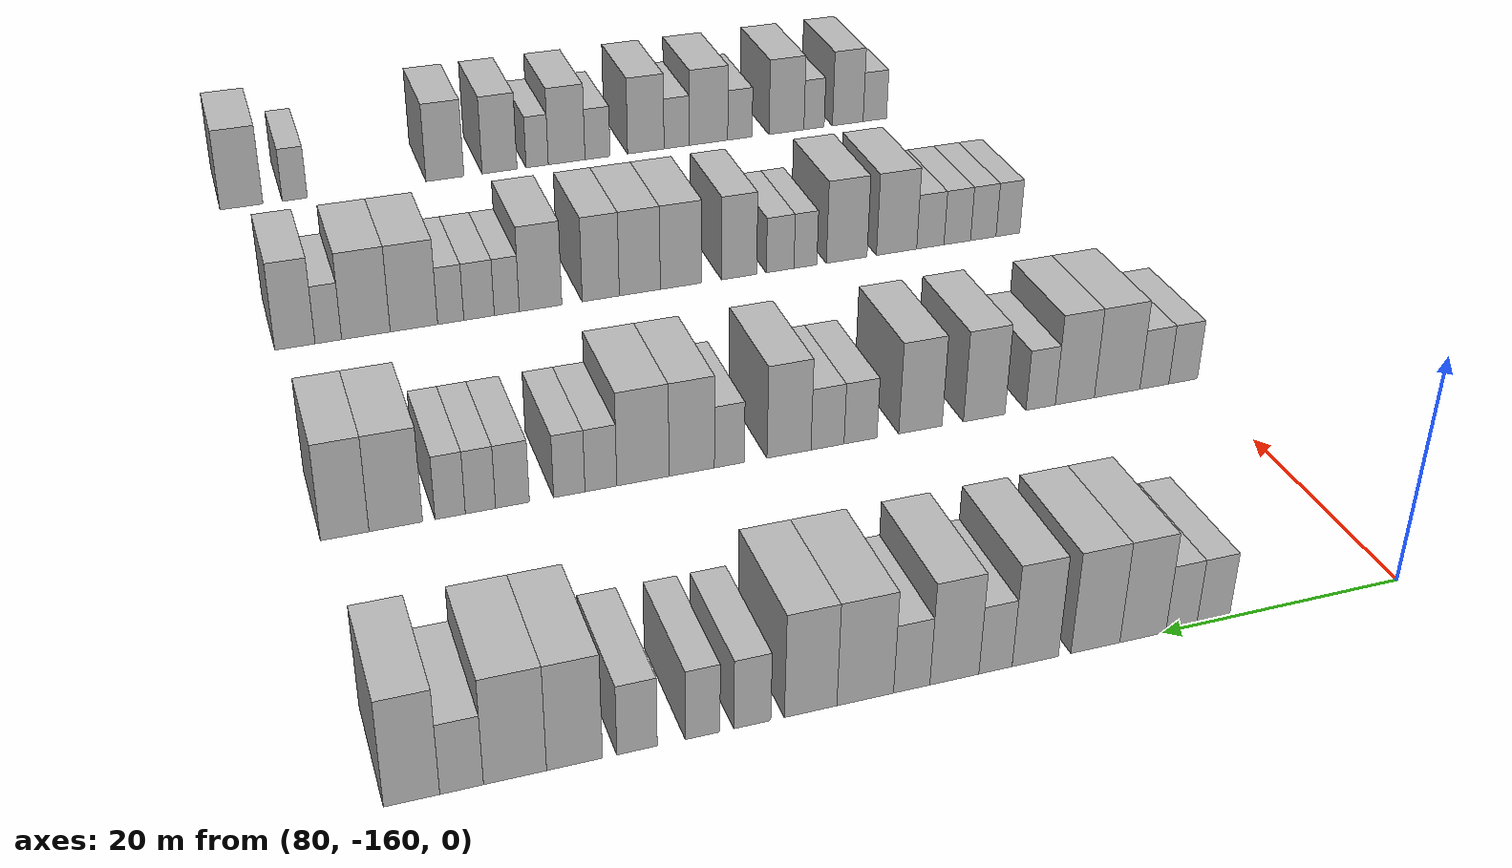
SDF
<sdf version="1.6">
 <world name="default">
  <model name="building_528">
   <static>1</static>
   <pose>85.0000 -144.0916 0 0.000000 0.000000 0.000000</pose>
   <link name="link">
    <pose>0 0 3.00 0 0 0</pose>
    <collision name="collision"><geometry><box><size>10.0000 2.7280 6.0000</size></box></geometry></collision>
    <visual name="visual">
     <cast_shadows>0</cast_shadows>
     <geometry><box><size>10.0000 2.7280 6.0000</size></box></geometry>
     <material>
      <script>
       <uri>model://HANNAS_wall/materials/scripts</uri>
       <uri>model://HANNAS_wall/materials/textures</uri>
       <name>vrc/HANNAS_wall</name>
      </script>
     </material>
    </visual>
   </link>
  </model>
  <model name="building_529">
   <static>1</static>
   <pose>85.0000 -141.4512 0 0.000000 0.000000 0.000000</pose>
   <link name="link">
    <pose>0 0 3.00 0 0 0</pose>
    <collision name="collision"><geometry><box><size>10.0000 2.5528 6.0000</size></box></geometry></collision>
    <visual name="visual">
     <cast_shadows>0</cast_shadows>
     <geometry><box><size>10.0000 2.5528 6.0000</size></box></geometry>
     <material>
      <script>
       <uri>model://HANNAS_wall/materials/scripts</uri>
       <uri>model://HANNAS_wall/materials/textures</uri>
       <name>vrc/HANNAS_wall</name>
      </script>
     </material>
    </visual>
   </link>
  </model>
  <model name="building_530">
   <static>1</static>
   <pose>85.0000 -138.2944 0 0.000000 0.000000 0.000000</pose>
   <link name="link">
    <pose>0 0 4.50 0 0 0</pose>
    <collision name="collision"><geometry><box><size>10.0000 3.7610 9.0000</size></box></geometry></collision>
    <visual name="visual">
     <cast_shadows>0</cast_shadows>
     <geometry><box><size>10.0000 3.7610 9.0000</size></box></geometry>
     <material>
      <script>
       <uri>model://HANNAS_wall/materials/scripts</uri>
       <uri>model://HANNAS_wall/materials/textures</uri>
       <name>vrc/HANNAS_wall</name>
      </script>
     </material>
    </visual>
   </link>
  </model>
  <model name="building_531">
   <static>1</static>
   <pose>85.0000 -134.4378 0 0.000000 0.000000 0.000000</pose>
   <link name="link">
    <pose>0 0 4.50 0 0 0</pose>
    <collision name="collision"><geometry><box><size>10.0000 3.9521 9.0000</size></box></geometry></collision>
    <visual name="visual">
     <cast_shadows>0</cast_shadows>
     <geometry><box><size>10.0000 3.9521 9.0000</size></box></geometry>
     <material>
      <script>
       <uri>model://HANNAS_wall/materials/scripts</uri>
       <uri>model://HANNAS_wall/materials/textures</uri>
       <name>vrc/HANNAS_wall</name>
      </script>
     </material>
    </visual>
   </link>
  </model>
  <model name="building_532">
   <static>1</static>
   <pose>85.0000 -129.6236 0 0.000000 0.000000 0.000000</pose>
   <link name="link">
    <pose>0 0 4.50 0 0 0</pose>
    <collision name="collision"><geometry><box><size>10.0000 3.6763 9.0000</size></box></geometry></collision>
    <visual name="visual">
     <cast_shadows>0</cast_shadows>
     <geometry><box><size>10.0000 3.6763 9.0000</size></box></geometry>
     <material>
      <script>
       <uri>model://HANNAS_wall/materials/scripts</uri>
       <uri>model://HANNAS_wall/materials/textures</uri>
       <name>vrc/HANNAS_wall</name>
      </script>
     </material>
    </visual>
   </link>
  </model>
  <model name="building_533">
   <static>1</static>
   <pose>85.0000 -126.4849 0 0.000000 0.000000 0.000000</pose>
   <link name="link">
    <pose>0 0 3.00 0 0 0</pose>
    <collision name="collision"><geometry><box><size>10.0000 2.6009 6.0000</size></box></geometry></collision>
    <visual name="visual">
     <cast_shadows>0</cast_shadows>
     <geometry><box><size>10.0000 2.6009 6.0000</size></box></geometry>
     <material>
      <script>
       <uri>model://HANNAS_wall/materials/scripts</uri>
       <uri>model://HANNAS_wall/materials/textures</uri>
       <name>vrc/HANNAS_wall</name>
      </script>
     </material>
    </visual>
   </link>
  </model>
  <model name="building_534">
   <static>1</static>
   <pose>85.0000 -123.2860 0 0.000000 0.000000 0.000000</pose>
   <link name="link">
    <pose>0 0 4.50 0 0 0</pose>
    <collision name="collision"><geometry><box><size>10.0000 3.7969 9.0000</size></box></geometry></collision>
    <visual name="visual">
     <cast_shadows>0</cast_shadows>
     <geometry><box><size>10.0000 3.7969 9.0000</size></box></geometry>
     <material>
      <script>
       <uri>model://HANNAS_wall/materials/scripts</uri>
       <uri>model://HANNAS_wall/materials/textures</uri>
       <name>vrc/HANNAS_wall</name>
      </script>
     </material>
    </visual>
   </link>
  </model>
  <model name="building_535">
   <static>1</static>
   <pose>85.0000 -120.0021 0 0.000000 0.000000 0.000000</pose>
   <link name="link">
    <pose>0 0 3.00 0 0 0</pose>
    <collision name="collision"><geometry><box><size>10.0000 2.7708 6.0000</size></box></geometry></collision>
    <visual name="visual">
     <cast_shadows>0</cast_shadows>
     <geometry><box><size>10.0000 2.7708 6.0000</size></box></geometry>
     <material>
      <script>
       <uri>model://HANNAS_wall/materials/scripts</uri>
       <uri>model://HANNAS_wall/materials/textures</uri>
       <name>vrc/HANNAS_wall</name>
      </script>
     </material>
    </visual>
   </link>
  </model>
  <model name="building_536">
   <static>1</static>
   <pose>85.0000 -116.4834 0 0.000000 0.000000 0.000000</pose>
   <link name="link">
    <pose>0 0 4.50 0 0 0</pose>
    <collision name="collision"><geometry><box><size>10.0000 4.2666 9.0000</size></box></geometry></collision>
    <visual name="visual">
     <cast_shadows>0</cast_shadows>
     <geometry><box><size>10.0000 4.2666 9.0000</size></box></geometry>
     <material>
      <script>
       <uri>model://HANNAS_wall/materials/scripts</uri>
       <uri>model://HANNAS_wall/materials/textures</uri>
       <name>vrc/HANNAS_wall</name>
      </script>
     </material>
    </visual>
   </link>
  </model>
  <model name="building_537">
   <static>1</static>
   <pose>85.0000 -112.4043 0 0.000000 0.000000 0.000000</pose>
   <link name="link">
    <pose>0 0 4.50 0 0 0</pose>
    <collision name="collision"><geometry><box><size>10.0000 3.8916 9.0000</size></box></geometry></collision>
    <visual name="visual">
     <cast_shadows>0</cast_shadows>
     <geometry><box><size>10.0000 3.8916 9.0000</size></box></geometry>
     <material>
      <script>
       <uri>model://HANNAS_wall/materials/scripts</uri>
       <uri>model://HANNAS_wall/materials/textures</uri>
       <name>vrc/HANNAS_wall</name>
      </script>
     </material>
    </visual>
   </link>
  </model>
  <model name="building_538">
   <static>1</static>
   <pose>85.0000 -108.1099 0 0.000000 0.000000 0.000000</pose>
   <link name="link">
    <pose>0 0 3.00 0 0 0</pose>
    <collision name="collision"><geometry><box><size>10.0000 2.6971 6.0000</size></box></geometry></collision>
    <visual name="visual">
     <cast_shadows>0</cast_shadows>
     <geometry><box><size>10.0000 2.6971 6.0000</size></box></geometry>
     <material>
      <script>
       <uri>model://HANNAS_wall/materials/scripts</uri>
       <uri>model://HANNAS_wall/materials/textures</uri>
       <name>vrc/HANNAS_wall</name>
      </script>
     </material>
    </visual>
   </link>
  </model>
  <model name="building_539">
   <static>1</static>
   <pose>85.0000 -104.5209 0 0.000000 0.000000 0.000000</pose>
   <link name="link">
    <pose>0 0 3.00 0 0 0</pose>
    <collision name="collision"><geometry><box><size>10.0000 2.4809 6.0000</size></box></geometry></collision>
    <visual name="visual">
     <cast_shadows>0</cast_shadows>
     <geometry><box><size>10.0000 2.4809 6.0000</size></box></geometry>
     <material>
      <script>
       <uri>model://HANNAS_wall/materials/scripts</uri>
       <uri>model://HANNAS_wall/materials/textures</uri>
       <name>vrc/HANNAS_wall</name>
      </script>
     </material>
    </visual>
   </link>
  </model>
  <model name="building_540">
   <static>1</static>
   <pose>85.0000 -99.8568 0 0.000000 0.000000 0.000000</pose>
   <link name="link">
    <pose>0 0 3.00 0 0 0</pose>
    <collision name="collision"><geometry><box><size>10.0000 2.8472 6.0000</size></box></geometry></collision>
    <visual name="visual">
     <cast_shadows>0</cast_shadows>
     <geometry><box><size>10.0000 2.8472 6.0000</size></box></geometry>
     <material>
      <script>
       <uri>model://HANNAS_wall/materials/scripts</uri>
       <uri>model://HANNAS_wall/materials/textures</uri>
       <name>vrc/HANNAS_wall</name>
      </script>
     </material>
    </visual>
   </link>
  </model>
  <model name="building_541">
   <static>1</static>
   <pose>85.0000 -95.4982 0 0.000000 0.000000 0.000000</pose>
   <link name="link">
    <pose>0 0 4.50 0 0 0</pose>
    <collision name="collision"><geometry><box><size>10.0000 3.8701 9.0000</size></box></geometry></collision>
    <visual name="visual">
     <cast_shadows>0</cast_shadows>
     <geometry><box><size>10.0000 3.8701 9.0000</size></box></geometry>
     <material>
      <script>
       <uri>model://HANNAS_wall/materials/scripts</uri>
       <uri>model://HANNAS_wall/materials/textures</uri>
       <name>vrc/HANNAS_wall</name>
      </script>
     </material>
    </visual>
   </link>
  </model>
  <model name="building_542">
   <static>1</static>
   <pose>85.0000 -91.4167 0 0.000000 0.000000 0.000000</pose>
   <link name="link">
    <pose>0 0 4.50 0 0 0</pose>
    <collision name="collision"><geometry><box><size>10.0000 4.2928 9.0000</size></box></geometry></collision>
    <visual name="visual">
     <cast_shadows>0</cast_shadows>
     <geometry><box><size>10.0000 4.2928 9.0000</size></box></geometry>
     <material>
      <script>
       <uri>model://HANNAS_wall/materials/scripts</uri>
       <uri>model://HANNAS_wall/materials/textures</uri>
       <name>vrc/HANNAS_wall</name>
      </script>
     </material>
    </visual>
   </link>
  </model>
  <model name="building_543">
   <static>1</static>
   <pose>85.0000 -87.8051 0 0.000000 0.000000 0.000000</pose>
   <link name="link">
    <pose>0 0 3.00 0 0 0</pose>
    <collision name="collision"><geometry><box><size>10.0000 2.9305 6.0000</size></box></geometry></collision>
    <visual name="visual">
     <cast_shadows>0</cast_shadows>
     <geometry><box><size>10.0000 2.9305 6.0000</size></box></geometry>
     <material>
      <script>
       <uri>model://HANNAS_wall/materials/scripts</uri>
       <uri>model://HANNAS_wall/materials/textures</uri>
       <name>vrc/HANNAS_wall</name>
      </script>
     </material>
    </visual>
   </link>
  </model>
  <model name="building_544">
   <static>1</static>
   <pose>85.0000 -84.4719 0 0.000000 0.000000 0.000000</pose>
   <link name="link">
    <pose>0 0 4.50 0 0 0</pose>
    <collision name="collision"><geometry><box><size>10.0000 3.7358 9.0000</size></box></geometry></collision>
    <visual name="visual">
     <cast_shadows>0</cast_shadows>
     <geometry><box><size>10.0000 3.7358 9.0000</size></box></geometry>
     <material>
      <script>
       <uri>model://HANNAS_wall/materials/scripts</uri>
       <uri>model://HANNAS_wall/materials/textures</uri>
       <name>vrc/HANNAS_wall</name>
      </script>
     </material>
    </visual>
   </link>
  </model>
  <model name="building_758">
   <static>1</static>
   <pose>115.0000 -159.0199 0 0.000000 0.000000 0.000000</pose>
   <link name="link">
    <pose>0 0 3.00 0 0 0</pose>
    <collision name="collision"><geometry><box><size>10.0000 2.8604 6.0000</size></box></geometry></collision>
    <visual name="visual">
     <cast_shadows>0</cast_shadows>
     <geometry><box><size>10.0000 2.8604 6.0000</size></box></geometry>
     <material>
      <script>
       <uri>model://HANNAS_wall/materials/scripts</uri>
       <uri>model://HANNAS_wall/materials/textures</uri>
       <name>vrc/HANNAS_wall</name>
      </script>
     </material>
    </visual>
   </link>
  </model>
  <model name="building_759">
   <static>1</static>
   <pose>115.0000 -156.1476 0 0.000000 0.000000 0.000000</pose>
   <link name="link">
    <pose>0 0 3.00 0 0 0</pose>
    <collision name="collision"><geometry><box><size>10.0000 2.8841 6.0000</size></box></geometry></collision>
    <visual name="visual">
     <cast_shadows>0</cast_shadows>
     <geometry><box><size>10.0000 2.8841 6.0000</size></box></geometry>
     <material>
      <script>
       <uri>model://HANNAS_wall/materials/scripts</uri>
       <uri>model://HANNAS_wall/materials/textures</uri>
       <name>vrc/HANNAS_wall</name>
      </script>
     </material>
    </visual>
   </link>
  </model>
  <model name="building_760">
   <static>1</static>
   <pose>115.0000 -152.4685 0 0.000000 0.000000 0.000000</pose>
   <link name="link">
    <pose>0 0 4.50 0 0 0</pose>
    <collision name="collision"><geometry><box><size>10.0000 4.4742 9.0000</size></box></geometry></collision>
    <visual name="visual">
     <cast_shadows>0</cast_shadows>
     <geometry><box><size>10.0000 4.4742 9.0000</size></box></geometry>
     <material>
      <script>
       <uri>model://HANNAS_wall/materials/scripts</uri>
       <uri>model://HANNAS_wall/materials/textures</uri>
       <name>vrc/HANNAS_wall</name>
      </script>
     </material>
    </visual>
   </link>
  </model>
  <model name="building_761">
   <static>1</static>
   <pose>115.0000 -148.3363 0 0.000000 0.000000 0.000000</pose>
   <link name="link">
    <pose>0 0 4.50 0 0 0</pose>
    <collision name="collision"><geometry><box><size>10.0000 3.7903 9.0000</size></box></geometry></collision>
    <visual name="visual">
     <cast_shadows>0</cast_shadows>
     <geometry><box><size>10.0000 3.7903 9.0000</size></box></geometry>
     <material>
      <script>
       <uri>model://HANNAS_wall/materials/scripts</uri>
       <uri>model://HANNAS_wall/materials/textures</uri>
       <name>vrc/HANNAS_wall</name>
      </script>
     </material>
    </visual>
   </link>
  </model>
  <model name="building_762">
   <static>1</static>
   <pose>115.0000 -145.0310 0 0.000000 0.000000 0.000000</pose>
   <link name="link">
    <pose>0 0 3.00 0 0 0</pose>
    <collision name="collision"><geometry><box><size>10.0000 2.8202 6.0000</size></box></geometry></collision>
    <visual name="visual">
     <cast_shadows>0</cast_shadows>
     <geometry><box><size>10.0000 2.8202 6.0000</size></box></geometry>
     <material>
      <script>
       <uri>model://HANNAS_wall/materials/scripts</uri>
       <uri>model://HANNAS_wall/materials/textures</uri>
       <name>vrc/HANNAS_wall</name>
      </script>
     </material>
    </visual>
   </link>
  </model>
  <model name="building_763">
   <static>1</static>
   <pose>115.0000 -139.6608 0 0.000000 0.000000 0.000000</pose>
   <link name="link">
    <pose>0 0 4.50 0 0 0</pose>
    <collision name="collision"><geometry><box><size>10.0000 3.9201 9.0000</size></box></geometry></collision>
    <visual name="visual">
     <cast_shadows>0</cast_shadows>
     <geometry><box><size>10.0000 3.9201 9.0000</size></box></geometry>
     <material>
      <script>
       <uri>model://HANNAS_wall/materials/scripts</uri>
       <uri>model://HANNAS_wall/materials/textures</uri>
       <name>vrc/HANNAS_wall</name>
      </script>
     </material>
    </visual>
   </link>
  </model>
  <model name="building_764">
   <static>1</static>
   <pose>115.0000 -133.6949 0 0.000000 0.000000 0.000000</pose>
   <link name="link">
    <pose>0 0 4.50 0 0 0</pose>
    <collision name="collision"><geometry><box><size>10.0000 4.0118 9.0000</size></box></geometry></collision>
    <visual name="visual">
     <cast_shadows>0</cast_shadows>
     <geometry><box><size>10.0000 4.0118 9.0000</size></box></geometry>
     <material>
      <script>
       <uri>model://HANNAS_wall/materials/scripts</uri>
       <uri>model://HANNAS_wall/materials/textures</uri>
       <name>vrc/HANNAS_wall</name>
      </script>
     </material>
    </visual>
   </link>
  </model>
  <model name="building_765">
   <static>1</static>
   <pose>115.0000 -128.1936 0 0.000000 0.000000 0.000000</pose>
   <link name="link">
    <pose>0 0 3.00 0 0 0</pose>
    <collision name="collision"><geometry><box><size>10.0000 2.9909 6.0000</size></box></geometry></collision>
    <visual name="visual">
     <cast_shadows>0</cast_shadows>
     <geometry><box><size>10.0000 2.9909 6.0000</size></box></geometry>
     <material>
      <script>
       <uri>model://HANNAS_wall/materials/scripts</uri>
       <uri>model://HANNAS_wall/materials/textures</uri>
       <name>vrc/HANNAS_wall</name>
      </script>
     </material>
    </visual>
   </link>
  </model>
  <model name="building_766">
   <static>1</static>
   <pose>115.0000 -125.2067 0 0.000000 0.000000 0.000000</pose>
   <link name="link">
    <pose>0 0 3.00 0 0 0</pose>
    <collision name="collision"><geometry><box><size>10.0000 2.9829 6.0000</size></box></geometry></collision>
    <visual name="visual">
     <cast_shadows>0</cast_shadows>
     <geometry><box><size>10.0000 2.9829 6.0000</size></box></geometry>
     <material>
      <script>
       <uri>model://HANNAS_wall/materials/scripts</uri>
       <uri>model://HANNAS_wall/materials/textures</uri>
       <name>vrc/HANNAS_wall</name>
      </script>
     </material>
    </visual>
   </link>
  </model>
  <model name="building_767">
   <static>1</static>
   <pose>115.0000 -121.7558 0 0.000000 0.000000 0.000000</pose>
   <link name="link">
    <pose>0 0 4.50 0 0 0</pose>
    <collision name="collision"><geometry><box><size>10.0000 3.9189 9.0000</size></box></geometry></collision>
    <visual name="visual">
     <cast_shadows>0</cast_shadows>
     <geometry><box><size>10.0000 3.9189 9.0000</size></box></geometry>
     <material>
      <script>
       <uri>model://HANNAS_wall/materials/scripts</uri>
       <uri>model://HANNAS_wall/materials/textures</uri>
       <name>vrc/HANNAS_wall</name>
      </script>
     </material>
    </visual>
   </link>
  </model>
  <model name="building_768">
   <static>1</static>
   <pose>115.0000 -116.4908 0 0.000000 0.000000 0.000000</pose>
   <link name="link">
    <pose>0 0 3.00 0 0 0</pose>
    <collision name="collision"><geometry><box><size>10.0000 2.6111 6.0000</size></box></geometry></collision>
    <visual name="visual">
     <cast_shadows>0</cast_shadows>
     <geometry><box><size>10.0000 2.6111 6.0000</size></box></geometry>
     <material>
      <script>
       <uri>model://HANNAS_wall/materials/scripts</uri>
       <uri>model://HANNAS_wall/materials/textures</uri>
       <name>vrc/HANNAS_wall</name>
      </script>
     </material>
    </visual>
   </link>
  </model>
  <model name="building_769">
   <static>1</static>
   <pose>115.0000 -113.2255 0 0.000000 0.000000 0.000000</pose>
   <link name="link">
    <pose>0 0 4.50 0 0 0</pose>
    <collision name="collision"><geometry><box><size>10.0000 3.9195 9.0000</size></box></geometry></collision>
    <visual name="visual">
     <cast_shadows>0</cast_shadows>
     <geometry><box><size>10.0000 3.9195 9.0000</size></box></geometry>
     <material>
      <script>
       <uri>model://HANNAS_wall/materials/scripts</uri>
       <uri>model://HANNAS_wall/materials/textures</uri>
       <name>vrc/HANNAS_wall</name>
      </script>
     </material>
    </visual>
   </link>
  </model>
  <model name="building_770">
   <static>1</static>
   <pose>115.0000 -109.0357 0 0.000000 0.000000 0.000000</pose>
   <link name="link">
    <pose>0 0 4.50 0 0 0</pose>
    <collision name="collision"><geometry><box><size>10.0000 4.4600 9.0000</size></box></geometry></collision>
    <visual name="visual">
     <cast_shadows>0</cast_shadows>
     <geometry><box><size>10.0000 4.4600 9.0000</size></box></geometry>
     <material>
      <script>
       <uri>model://HANNAS_wall/materials/scripts</uri>
       <uri>model://HANNAS_wall/materials/textures</uri>
       <name>vrc/HANNAS_wall</name>
      </script>
     </material>
    </visual>
   </link>
  </model>
  <model name="building_771">
   <static>1</static>
   <pose>115.0000 -105.4641 0 0.000000 0.000000 0.000000</pose>
   <link name="link">
    <pose>0 0 3.00 0 0 0</pose>
    <collision name="collision"><geometry><box><size>10.0000 2.6832 6.0000</size></box></geometry></collision>
    <visual name="visual">
     <cast_shadows>0</cast_shadows>
     <geometry><box><size>10.0000 2.6832 6.0000</size></box></geometry>
     <material>
      <script>
       <uri>model://HANNAS_wall/materials/scripts</uri>
       <uri>model://HANNAS_wall/materials/textures</uri>
       <name>vrc/HANNAS_wall</name>
      </script>
     </material>
    </visual>
   </link>
  </model>
  <model name="building_772">
   <static>1</static>
   <pose>115.0000 -102.8085 0 0.000000 0.000000 0.000000</pose>
   <link name="link">
    <pose>0 0 3.00 0 0 0</pose>
    <collision name="collision"><geometry><box><size>10.0000 2.6282 6.0000</size></box></geometry></collision>
    <visual name="visual">
     <cast_shadows>0</cast_shadows>
     <geometry><box><size>10.0000 2.6282 6.0000</size></box></geometry>
     <material>
      <script>
       <uri>model://HANNAS_wall/materials/scripts</uri>
       <uri>model://HANNAS_wall/materials/textures</uri>
       <name>vrc/HANNAS_wall</name>
      </script>
     </material>
    </visual>
   </link>
  </model>
  <model name="building_773">
   <static>1</static>
   <pose>115.0000 -98.1057 0 0.000000 0.000000 0.000000</pose>
   <link name="link">
    <pose>0 0 3.00 0 0 0</pose>
    <collision name="collision"><geometry><box><size>10.0000 2.7773 6.0000</size></box></geometry></collision>
    <visual name="visual">
     <cast_shadows>0</cast_shadows>
     <geometry><box><size>10.0000 2.7773 6.0000</size></box></geometry>
     <material>
      <script>
       <uri>model://HANNAS_wall/materials/scripts</uri>
       <uri>model://HANNAS_wall/materials/textures</uri>
       <name>vrc/HANNAS_wall</name>
      </script>
     </material>
    </visual>
   </link>
  </model>
  <model name="building_774">
   <static>1</static>
   <pose>115.0000 -95.4831 0 0.000000 0.000000 0.000000</pose>
   <link name="link">
    <pose>0 0 3.00 0 0 0</pose>
    <collision name="collision"><geometry><box><size>10.0000 2.4679 6.0000</size></box></geometry></collision>
    <visual name="visual">
     <cast_shadows>0</cast_shadows>
     <geometry><box><size>10.0000 2.4679 6.0000</size></box></geometry>
     <material>
      <script>
       <uri>model://HANNAS_wall/materials/scripts</uri>
       <uri>model://HANNAS_wall/materials/textures</uri>
       <name>vrc/HANNAS_wall</name>
      </script>
     </material>
    </visual>
   </link>
  </model>
  <model name="building_775">
   <static>1</static>
   <pose>115.0000 -93.0254 0 0.000000 0.000000 0.000000</pose>
   <link name="link">
    <pose>0 0 3.00 0 0 0</pose>
    <collision name="collision"><geometry><box><size>10.0000 2.4474 6.0000</size></box></geometry></collision>
    <visual name="visual">
     <cast_shadows>0</cast_shadows>
     <geometry><box><size>10.0000 2.4474 6.0000</size></box></geometry>
     <material>
      <script>
       <uri>model://HANNAS_wall/materials/scripts</uri>
       <uri>model://HANNAS_wall/materials/textures</uri>
       <name>vrc/HANNAS_wall</name>
      </script>
     </material>
    </visual>
   </link>
  </model>
  <model name="building_776">
   <static>1</static>
   <pose>115.0000 -88.6681 0 0.000000 0.000000 0.000000</pose>
   <link name="link">
    <pose>0 0 4.50 0 0 0</pose>
    <collision name="collision"><geometry><box><size>10.0000 4.2672 9.0000</size></box></geometry></collision>
    <visual name="visual">
     <cast_shadows>0</cast_shadows>
     <geometry><box><size>10.0000 4.2672 9.0000</size></box></geometry>
     <material>
      <script>
       <uri>model://HANNAS_wall/materials/scripts</uri>
       <uri>model://HANNAS_wall/materials/textures</uri>
       <name>vrc/HANNAS_wall</name>
      </script>
     </material>
    </visual>
   </link>
  </model>
  <model name="building_777">
   <static>1</static>
   <pose>115.0000 -84.6260 0 0.000000 0.000000 0.000000</pose>
   <link name="link">
    <pose>0 0 4.50 0 0 0</pose>
    <collision name="collision"><geometry><box><size>10.0000 3.8170 9.0000</size></box></geometry></collision>
    <visual name="visual">
     <cast_shadows>0</cast_shadows>
     <geometry><box><size>10.0000 3.8170 9.0000</size></box></geometry>
     <material>
      <script>
       <uri>model://HANNAS_wall/materials/scripts</uri>
       <uri>model://HANNAS_wall/materials/textures</uri>
       <name>vrc/HANNAS_wall</name>
      </script>
     </material>
    </visual>
   </link>
  </model>
  <model name="building_989">
   <static>1</static>
   <pose>145.0000 -156.3393 0 0.000000 0.000000 0.000000</pose>
   <link name="link">
    <pose>0 0 3.00 0 0 0</pose>
    <collision name="collision"><geometry><box><size>10.0000 2.6438 6.0000</size></box></geometry></collision>
    <visual name="visual">
     <cast_shadows>0</cast_shadows>
     <geometry><box><size>10.0000 2.6438 6.0000</size></box></geometry>
     <material>
      <script>
       <uri>model://HANNAS_wall/materials/scripts</uri>
       <uri>model://HANNAS_wall/materials/textures</uri>
       <name>vrc/HANNAS_wall</name>
      </script>
     </material>
    </visual>
   </link>
  </model>
  <model name="building_990">
   <static>1</static>
   <pose>145.0000 -153.6076 0 0.000000 0.000000 0.000000</pose>
   <link name="link">
    <pose>0 0 3.00 0 0 0</pose>
    <collision name="collision"><geometry><box><size>10.0000 2.8197 6.0000</size></box></geometry></collision>
    <visual name="visual">
     <cast_shadows>0</cast_shadows>
     <geometry><box><size>10.0000 2.8197 6.0000</size></box></geometry>
     <material>
      <script>
       <uri>model://HANNAS_wall/materials/scripts</uri>
       <uri>model://HANNAS_wall/materials/textures</uri>
       <name>vrc/HANNAS_wall</name>
      </script>
     </material>
    </visual>
   </link>
  </model>
  <model name="building_991">
   <static>1</static>
   <pose>145.0000 -150.7416 0 0.000000 0.000000 0.000000</pose>
   <link name="link">
    <pose>0 0 3.00 0 0 0</pose>
    <collision name="collision"><geometry><box><size>10.0000 2.9122 6.0000</size></box></geometry></collision>
    <visual name="visual">
     <cast_shadows>0</cast_shadows>
     <geometry><box><size>10.0000 2.9122 6.0000</size></box></geometry>
     <material>
      <script>
       <uri>model://HANNAS_wall/materials/scripts</uri>
       <uri>model://HANNAS_wall/materials/textures</uri>
       <name>vrc/HANNAS_wall</name>
      </script>
     </material>
    </visual>
   </link>
  </model>
  <model name="building_992">
   <static>1</static>
   <pose>145.0000 -147.7960 0 0.000000 0.000000 0.000000</pose>
   <link name="link">
    <pose>0 0 3.00 0 0 0</pose>
    <collision name="collision"><geometry><box><size>10.0000 2.9792 6.0000</size></box></geometry></collision>
    <visual name="visual">
     <cast_shadows>0</cast_shadows>
     <geometry><box><size>10.0000 2.9792 6.0000</size></box></geometry>
     <material>
      <script>
       <uri>model://HANNAS_wall/materials/scripts</uri>
       <uri>model://HANNAS_wall/materials/textures</uri>
       <name>vrc/HANNAS_wall</name>
      </script>
     </material>
    </visual>
   </link>
  </model>
  <model name="building_993">
   <static>1</static>
   <pose>145.0000 -144.1344 0 0.000000 0.000000 0.000000</pose>
   <link name="link">
    <pose>0 0 4.50 0 0 0</pose>
    <collision name="collision"><geometry><box><size>10.0000 4.3438 9.0000</size></box></geometry></collision>
    <visual name="visual">
     <cast_shadows>0</cast_shadows>
     <geometry><box><size>10.0000 4.3438 9.0000</size></box></geometry>
     <material>
      <script>
       <uri>model://HANNAS_wall/materials/scripts</uri>
       <uri>model://HANNAS_wall/materials/textures</uri>
       <name>vrc/HANNAS_wall</name>
      </script>
     </material>
    </visual>
   </link>
  </model>
  <model name="building_994">
   <static>1</static>
   <pose>145.0000 -138.7981 0 0.000000 0.000000 0.000000</pose>
   <link name="link">
    <pose>0 0 4.50 0 0 0</pose>
    <collision name="collision"><geometry><box><size>10.0000 4.3288 9.0000</size></box></geometry></collision>
    <visual name="visual">
     <cast_shadows>0</cast_shadows>
     <geometry><box><size>10.0000 4.3288 9.0000</size></box></geometry>
     <material>
      <script>
       <uri>model://HANNAS_wall/materials/scripts</uri>
       <uri>model://HANNAS_wall/materials/textures</uri>
       <name>vrc/HANNAS_wall</name>
      </script>
     </material>
    </visual>
   </link>
  </model>
  <model name="building_995">
   <static>1</static>
   <pose>145.0000 -134.4310 0 0.000000 0.000000 0.000000</pose>
   <link name="link">
    <pose>0 0 3.00 0 0 0</pose>
    <collision name="collision"><geometry><box><size>10.0000 2.4055 6.0000</size></box></geometry></collision>
    <visual name="visual">
     <cast_shadows>0</cast_shadows>
     <geometry><box><size>10.0000 2.4055 6.0000</size></box></geometry>
     <material>
      <script>
       <uri>model://HANNAS_wall/materials/scripts</uri>
       <uri>model://HANNAS_wall/materials/textures</uri>
       <name>vrc/HANNAS_wall</name>
      </script>
     </material>
    </visual>
   </link>
  </model>
  <model name="building_996">
   <static>1</static>
   <pose>145.0000 -131.7873 0 0.000000 0.000000 0.000000</pose>
   <link name="link">
    <pose>0 0 3.00 0 0 0</pose>
    <collision name="collision"><geometry><box><size>10.0000 2.8817 6.0000</size></box></geometry></collision>
    <visual name="visual">
     <cast_shadows>0</cast_shadows>
     <geometry><box><size>10.0000 2.8817 6.0000</size></box></geometry>
     <material>
      <script>
       <uri>model://HANNAS_wall/materials/scripts</uri>
       <uri>model://HANNAS_wall/materials/textures</uri>
       <name>vrc/HANNAS_wall</name>
      </script>
     </material>
    </visual>
   </link>
  </model>
  <model name="building_997">
   <static>1</static>
   <pose>145.0000 -127.5425 0 0.000000 0.000000 0.000000</pose>
   <link name="link">
    <pose>0 0 4.50 0 0 0</pose>
    <collision name="collision"><geometry><box><size>10.0000 3.6079 9.0000</size></box></geometry></collision>
    <visual name="visual">
     <cast_shadows>0</cast_shadows>
     <geometry><box><size>10.0000 3.6079 9.0000</size></box></geometry>
     <material>
      <script>
       <uri>model://HANNAS_wall/materials/scripts</uri>
       <uri>model://HANNAS_wall/materials/textures</uri>
       <name>vrc/HANNAS_wall</name>
      </script>
     </material>
    </visual>
   </link>
  </model>
  <model name="building_998">
   <static>1</static>
   <pose>145.0000 -121.6312 0 0.000000 0.000000 0.000000</pose>
   <link name="link">
    <pose>0 0 4.50 0 0 0</pose>
    <collision name="collision"><geometry><box><size>10.0000 4.2149 9.0000</size></box></geometry></collision>
    <visual name="visual">
     <cast_shadows>0</cast_shadows>
     <geometry><box><size>10.0000 4.2149 9.0000</size></box></geometry>
     <material>
      <script>
       <uri>model://HANNAS_wall/materials/scripts</uri>
       <uri>model://HANNAS_wall/materials/textures</uri>
       <name>vrc/HANNAS_wall</name>
      </script>
     </material>
    </visual>
   </link>
  </model>
  <model name="building_999">
   <static>1</static>
   <pose>145.0000 -117.4743 0 0.000000 0.000000 0.000000</pose>
   <link name="link">
    <pose>0 0 4.50 0 0 0</pose>
    <collision name="collision"><geometry><box><size>10.0000 4.0988 9.0000</size></box></geometry></collision>
    <visual name="visual">
     <cast_shadows>0</cast_shadows>
     <geometry><box><size>10.0000 4.0988 9.0000</size></box></geometry>
     <material>
      <script>
       <uri>model://HANNAS_wall/materials/scripts</uri>
       <uri>model://HANNAS_wall/materials/textures</uri>
       <name>vrc/HANNAS_wall</name>
      </script>
     </material>
    </visual>
   </link>
  </model>
  <model name="building_1000">
   <static>1</static>
   <pose>145.0000 -113.5899 0 0.000000 0.000000 0.000000</pose>
   <link name="link">
    <pose>0 0 4.50 0 0 0</pose>
    <collision name="collision"><geometry><box><size>10.0000 3.6702 9.0000</size></box></geometry></collision>
    <visual name="visual">
     <cast_shadows>0</cast_shadows>
     <geometry><box><size>10.0000 3.6702 9.0000</size></box></geometry>
     <material>
      <script>
       <uri>model://HANNAS_wall/materials/scripts</uri>
       <uri>model://HANNAS_wall/materials/textures</uri>
       <name>vrc/HANNAS_wall</name>
      </script>
     </material>
    </visual>
   </link>
  </model>
  <model name="building_1001">
   <static>1</static>
   <pose>145.0000 -107.6910 0 0.000000 0.000000 0.000000</pose>
   <link name="link">
    <pose>0 0 4.50 0 0 0</pose>
    <collision name="collision"><geometry><box><size>10.0000 4.1277 9.0000</size></box></geometry></collision>
    <visual name="visual">
     <cast_shadows>0</cast_shadows>
     <geometry><box><size>10.0000 4.1277 9.0000</size></box></geometry>
     <material>
      <script>
       <uri>model://HANNAS_wall/materials/scripts</uri>
       <uri>model://HANNAS_wall/materials/textures</uri>
       <name>vrc/HANNAS_wall</name>
      </script>
     </material>
    </visual>
   </link>
  </model>
  <model name="building_1002">
   <static>1</static>
   <pose>145.0000 -104.4217 0 0.000000 0.000000 0.000000</pose>
   <link name="link">
    <pose>0 0 3.00 0 0 0</pose>
    <collision name="collision"><geometry><box><size>10.0000 2.4108 6.0000</size></box></geometry></collision>
    <visual name="visual">
     <cast_shadows>0</cast_shadows>
     <geometry><box><size>10.0000 2.4108 6.0000</size></box></geometry>
     <material>
      <script>
       <uri>model://HANNAS_wall/materials/scripts</uri>
       <uri>model://HANNAS_wall/materials/textures</uri>
       <name>vrc/HANNAS_wall</name>
      </script>
     </material>
    </visual>
   </link>
  </model>
  <model name="building_1003">
   <static>1</static>
   <pose>145.0000 -101.7590 0 0.000000 0.000000 0.000000</pose>
   <link name="link">
    <pose>0 0 3.00 0 0 0</pose>
    <collision name="collision"><geometry><box><size>10.0000 2.9146 6.0000</size></box></geometry></collision>
    <visual name="visual">
     <cast_shadows>0</cast_shadows>
     <geometry><box><size>10.0000 2.9146 6.0000</size></box></geometry>
     <material>
      <script>
       <uri>model://HANNAS_wall/materials/scripts</uri>
       <uri>model://HANNAS_wall/materials/textures</uri>
       <name>vrc/HANNAS_wall</name>
      </script>
     </material>
    </visual>
   </link>
  </model>
  <model name="building_1004">
   <static>1</static>
   <pose>145.0000 -99.0635 0 0.000000 0.000000 0.000000</pose>
   <link name="link">
    <pose>0 0 3.00 0 0 0</pose>
    <collision name="collision"><geometry><box><size>10.0000 2.4765 6.0000</size></box></geometry></collision>
    <visual name="visual">
     <cast_shadows>0</cast_shadows>
     <geometry><box><size>10.0000 2.4765 6.0000</size></box></geometry>
     <material>
      <script>
       <uri>model://HANNAS_wall/materials/scripts</uri>
       <uri>model://HANNAS_wall/materials/textures</uri>
       <name>vrc/HANNAS_wall</name>
      </script>
     </material>
    </visual>
   </link>
  </model>
  <model name="building_1005">
   <static>1</static>
   <pose>145.0000 -95.6001 0 0.000000 0.000000 0.000000</pose>
   <link name="link">
    <pose>0 0 4.50 0 0 0</pose>
    <collision name="collision"><geometry><box><size>10.0000 4.4504 9.0000</size></box></geometry></collision>
    <visual name="visual">
     <cast_shadows>0</cast_shadows>
     <geometry><box><size>10.0000 4.4504 9.0000</size></box></geometry>
     <material>
      <script>
       <uri>model://HANNAS_wall/materials/scripts</uri>
       <uri>model://HANNAS_wall/materials/textures</uri>
       <name>vrc/HANNAS_wall</name>
      </script>
     </material>
    </visual>
   </link>
  </model>
  <model name="building_1006">
   <static>1</static>
   <pose>145.0000 -91.1253 0 0.000000 0.000000 0.000000</pose>
   <link name="link">
    <pose>0 0 4.50 0 0 0</pose>
    <collision name="collision"><geometry><box><size>10.0000 4.4990 9.0000</size></box></geometry></collision>
    <visual name="visual">
     <cast_shadows>0</cast_shadows>
     <geometry><box><size>10.0000 4.4990 9.0000</size></box></geometry>
     <material>
      <script>
       <uri>model://HANNAS_wall/materials/scripts</uri>
       <uri>model://HANNAS_wall/materials/textures</uri>
       <name>vrc/HANNAS_wall</name>
      </script>
     </material>
    </visual>
   </link>
  </model>
  <model name="building_1007">
   <static>1</static>
   <pose>145.0000 -87.6597 0 0.000000 0.000000 0.000000</pose>
   <link name="link">
    <pose>0 0 3.00 0 0 0</pose>
    <collision name="collision"><geometry><box><size>10.0000 2.4323 6.0000</size></box></geometry></collision>
    <visual name="visual">
     <cast_shadows>0</cast_shadows>
     <geometry><box><size>10.0000 2.4323 6.0000</size></box></geometry>
     <material>
      <script>
       <uri>model://HANNAS_wall/materials/scripts</uri>
       <uri>model://HANNAS_wall/materials/textures</uri>
       <name>vrc/HANNAS_wall</name>
      </script>
     </material>
    </visual>
   </link>
  </model>
  <model name="building_1008">
   <static>1</static>
   <pose>145.0000 -84.6091 0 0.000000 0.000000 0.000000</pose>
   <link name="link">
    <pose>0 0 4.50 0 0 0</pose>
    <collision name="collision"><geometry><box><size>10.0000 3.6689 9.0000</size></box></geometry></collision>
    <visual name="visual">
     <cast_shadows>0</cast_shadows>
     <geometry><box><size>10.0000 3.6689 9.0000</size></box></geometry>
     <material>
      <script>
       <uri>model://HANNAS_wall/materials/scripts</uri>
       <uri>model://HANNAS_wall/materials/textures</uri>
       <name>vrc/HANNAS_wall</name>
      </script>
     </material>
    </visual>
   </link>
  </model>
  <model name="building_1222">
   <static>1</static>
   <pose>175.0000 -154.0865 0 0.000000 0.000000 0.000000</pose>
   <link name="link">
    <pose>0 0 3.00 0 0 0</pose>
    <collision name="collision"><geometry><box><size>10.0000 2.8711 6.0000</size></box></geometry></collision>
    <visual name="visual">
     <cast_shadows>0</cast_shadows>
     <geometry><box><size>10.0000 2.8711 6.0000</size></box></geometry>
     <material>
      <script>
       <uri>model://HANNAS_wall/materials/scripts</uri>
       <uri>model://HANNAS_wall/materials/textures</uri>
       <name>vrc/HANNAS_wall</name>
      </script>
     </material>
    </visual>
   </link>
  </model>
  <model name="building_1223">
   <static>1</static>
   <pose>175.0000 -150.7799 0 0.000000 0.000000 0.000000</pose>
   <link name="link">
    <pose>0 0 4.50 0 0 0</pose>
    <collision name="collision"><geometry><box><size>10.0000 3.7421 9.0000</size></box></geometry></collision>
    <visual name="visual">
     <cast_shadows>0</cast_shadows>
     <geometry><box><size>10.0000 3.7421 9.0000</size></box></geometry>
     <material>
      <script>
       <uri>model://HANNAS_wall/materials/scripts</uri>
       <uri>model://HANNAS_wall/materials/textures</uri>
       <name>vrc/HANNAS_wall</name>
      </script>
     </material>
    </visual>
   </link>
  </model>
  <model name="building_1224">
   <static>1</static>
   <pose>175.0000 -146.6853 0 0.000000 0.000000 0.000000</pose>
   <link name="link">
    <pose>0 0 3.00 0 0 0</pose>
    <collision name="collision"><geometry><box><size>10.0000 2.4471 6.0000</size></box></geometry></collision>
    <visual name="visual">
     <cast_shadows>0</cast_shadows>
     <geometry><box><size>10.0000 2.4471 6.0000</size></box></geometry>
     <material>
      <script>
       <uri>model://HANNAS_wall/materials/scripts</uri>
       <uri>model://HANNAS_wall/materials/textures</uri>
       <name>vrc/HANNAS_wall</name>
      </script>
     </material>
    </visual>
   </link>
  </model>
  <model name="building_1225">
   <static>1</static>
   <pose>175.0000 -143.3699 0 0.000000 0.000000 0.000000</pose>
   <link name="link">
    <pose>0 0 4.50 0 0 0</pose>
    <collision name="collision"><geometry><box><size>10.0000 4.1837 9.0000</size></box></geometry></collision>
    <visual name="visual">
     <cast_shadows>0</cast_shadows>
     <geometry><box><size>10.0000 4.1837 9.0000</size></box></geometry>
     <material>
      <script>
       <uri>model://HANNAS_wall/materials/scripts</uri>
       <uri>model://HANNAS_wall/materials/textures</uri>
       <name>vrc/HANNAS_wall</name>
      </script>
     </material>
    </visual>
   </link>
  </model>
  <model name="building_1226">
   <static>1</static>
   <pose>175.0000 -137.8351 0 0.000000 0.000000 0.000000</pose>
   <link name="link">
    <pose>0 0 3.00 0 0 0</pose>
    <collision name="collision"><geometry><box><size>10.0000 2.8860 6.0000</size></box></geometry></collision>
    <visual name="visual">
     <cast_shadows>0</cast_shadows>
     <geometry><box><size>10.0000 2.8860 6.0000</size></box></geometry>
     <material>
      <script>
       <uri>model://HANNAS_wall/materials/scripts</uri>
       <uri>model://HANNAS_wall/materials/textures</uri>
       <name>vrc/HANNAS_wall</name>
      </script>
     </material>
    </visual>
   </link>
  </model>
  <model name="building_1227">
   <static>1</static>
   <pose>175.0000 -134.1569 0 0.000000 0.000000 0.000000</pose>
   <link name="link">
    <pose>0 0 4.50 0 0 0</pose>
    <collision name="collision"><geometry><box><size>10.0000 4.4704 9.0000</size></box></geometry></collision>
    <visual name="visual">
     <cast_shadows>0</cast_shadows>
     <geometry><box><size>10.0000 4.4704 9.0000</size></box></geometry>
     <material>
      <script>
       <uri>model://HANNAS_wall/materials/scripts</uri>
       <uri>model://HANNAS_wall/materials/textures</uri>
       <name>vrc/HANNAS_wall</name>
      </script>
     </material>
    </visual>
   </link>
  </model>
  <model name="building_1228">
   <static>1</static>
   <pose>175.0000 -130.4438 0 0.000000 0.000000 0.000000</pose>
   <link name="link">
    <pose>0 0 3.00 0 0 0</pose>
    <collision name="collision"><geometry><box><size>10.0000 2.9558 6.0000</size></box></geometry></collision>
    <visual name="visual">
     <cast_shadows>0</cast_shadows>
     <geometry><box><size>10.0000 2.9558 6.0000</size></box></geometry>
     <material>
      <script>
       <uri>model://HANNAS_wall/materials/scripts</uri>
       <uri>model://HANNAS_wall/materials/textures</uri>
       <name>vrc/HANNAS_wall</name>
      </script>
     </material>
    </visual>
   </link>
  </model>
  <model name="building_1229">
   <static>1</static>
   <pose>175.0000 -126.8711 0 0.000000 0.000000 0.000000</pose>
   <link name="link">
    <pose>0 0 4.50 0 0 0</pose>
    <collision name="collision"><geometry><box><size>10.0000 4.1897 9.0000</size></box></geometry></collision>
    <visual name="visual">
     <cast_shadows>0</cast_shadows>
     <geometry><box><size>10.0000 4.1897 9.0000</size></box></geometry>
     <material>
      <script>
       <uri>model://HANNAS_wall/materials/scripts</uri>
       <uri>model://HANNAS_wall/materials/textures</uri>
       <name>vrc/HANNAS_wall</name>
      </script>
     </material>
    </visual>
   </link>
  </model>
  <model name="building_1230">
   <static>1</static>
   <pose>175.0000 -121.3561 0 0.000000 0.000000 0.000000</pose>
   <link name="link">
    <pose>0 0 3.00 0 0 0</pose>
    <collision name="collision"><geometry><box><size>10.0000 2.8403 6.0000</size></box></geometry></collision>
    <visual name="visual">
     <cast_shadows>0</cast_shadows>
     <geometry><box><size>10.0000 2.8403 6.0000</size></box></geometry>
     <material>
      <script>
       <uri>model://HANNAS_wall/materials/scripts</uri>
       <uri>model://HANNAS_wall/materials/textures</uri>
       <name>vrc/HANNAS_wall</name>
      </script>
     </material>
    </visual>
   </link>
  </model>
  <model name="building_1231">
   <static>1</static>
   <pose>175.0000 -117.8740 0 0.000000 0.000000 0.000000</pose>
   <link name="link">
    <pose>0 0 4.50 0 0 0</pose>
    <collision name="collision"><geometry><box><size>10.0000 4.1239 9.0000</size></box></geometry></collision>
    <visual name="visual">
     <cast_shadows>0</cast_shadows>
     <geometry><box><size>10.0000 4.1239 9.0000</size></box></geometry>
     <material>
      <script>
       <uri>model://HANNAS_wall/materials/scripts</uri>
       <uri>model://HANNAS_wall/materials/textures</uri>
       <name>vrc/HANNAS_wall</name>
      </script>
     </material>
    </visual>
   </link>
  </model>
  <model name="building_1232">
   <static>1</static>
   <pose>175.0000 -114.5744 0 0.000000 0.000000 0.000000</pose>
   <link name="link">
    <pose>0 0 3.00 0 0 0</pose>
    <collision name="collision"><geometry><box><size>10.0000 2.4752 6.0000</size></box></geometry></collision>
    <visual name="visual">
     <cast_shadows>0</cast_shadows>
     <geometry><box><size>10.0000 2.4752 6.0000</size></box></geometry>
     <material>
      <script>
       <uri>model://HANNAS_wall/materials/scripts</uri>
       <uri>model://HANNAS_wall/materials/textures</uri>
       <name>vrc/HANNAS_wall</name>
      </script>
     </material>
    </visual>
   </link>
  </model>
  <model name="building_1233">
   <static>1</static>
   <pose>175.0000 -110.4120 0 0.000000 0.000000 0.000000</pose>
   <link name="link">
    <pose>0 0 4.50 0 0 0</pose>
    <collision name="collision"><geometry><box><size>10.0000 3.8496 9.0000</size></box></geometry></collision>
    <visual name="visual">
     <cast_shadows>0</cast_shadows>
     <geometry><box><size>10.0000 3.8496 9.0000</size></box></geometry>
     <material>
      <script>
       <uri>model://HANNAS_wall/materials/scripts</uri>
       <uri>model://HANNAS_wall/materials/textures</uri>
       <name>vrc/HANNAS_wall</name>
      </script>
     </material>
    </visual>
   </link>
  </model>
  <model name="building_1234">
   <static>1</static>
   <pose>175.0000 -104.4276 0 0.000000 0.000000 0.000000</pose>
   <link name="link">
    <pose>0 0 4.50 0 0 0</pose>
    <collision name="collision"><geometry><box><size>10.0000 4.1192 9.0000</size></box></geometry></collision>
    <visual name="visual">
     <cast_shadows>0</cast_shadows>
     <geometry><box><size>10.0000 4.1192 9.0000</size></box></geometry>
     <material>
      <script>
       <uri>model://HANNAS_wall/materials/scripts</uri>
       <uri>model://HANNAS_wall/materials/textures</uri>
       <name>vrc/HANNAS_wall</name>
      </script>
     </material>
    </visual>
   </link>
  </model>
  <model name="building_1235">
   <static>1</static>
   <pose>175.0000 -88.4608 0 0.000000 0.000000 0.000000</pose>
   <link name="link">
    <pose>0 0 3.00 0 0 0</pose>
    <collision name="collision"><geometry><box><size>10.0000 2.6048 6.0000</size></box></geometry></collision>
    <visual name="visual">
     <cast_shadows>0</cast_shadows>
     <geometry><box><size>10.0000 2.6048 6.0000</size></box></geometry>
     <material>
      <script>
       <uri>model://HANNAS_wall/materials/scripts</uri>
       <uri>model://HANNAS_wall/materials/textures</uri>
       <name>vrc/HANNAS_wall</name>
      </script>
     </material>
    </visual>
   </link>
  </model>
  <model name="building_1236">
   <static>1</static>
   <pose>175.0000 -82.9463 0 0.000000 0.000000 0.000000</pose>
   <link name="link">
    <pose>0 0 4.50 0 0 0</pose>
    <collision name="collision"><geometry><box><size>10.0000 4.4242 9.0000</size></box></geometry></collision>
    <visual name="visual">
     <cast_shadows>0</cast_shadows>
     <geometry><box><size>10.0000 4.4242 9.0000</size></box></geometry>
     <material>
      <script>
       <uri>model://HANNAS_wall/materials/scripts</uri>
       <uri>model://HANNAS_wall/materials/textures</uri>
       <name>vrc/HANNAS_wall</name>
      </script>
     </material>
    </visual>
   </link>
  </model>
 </world>
</sdf>
